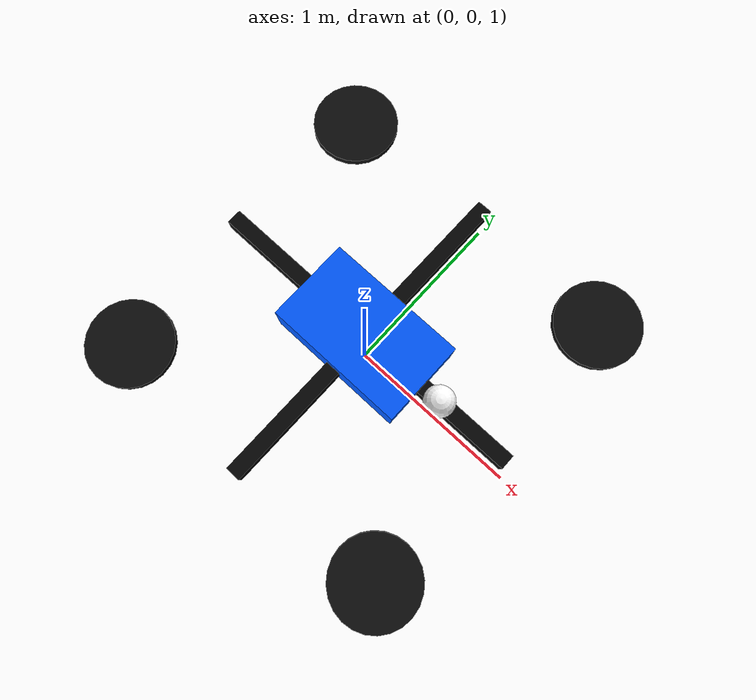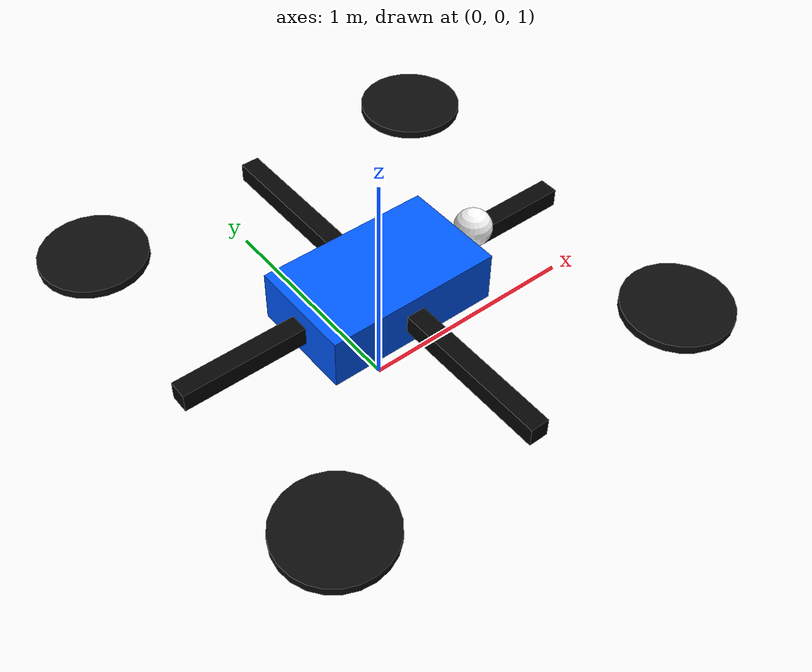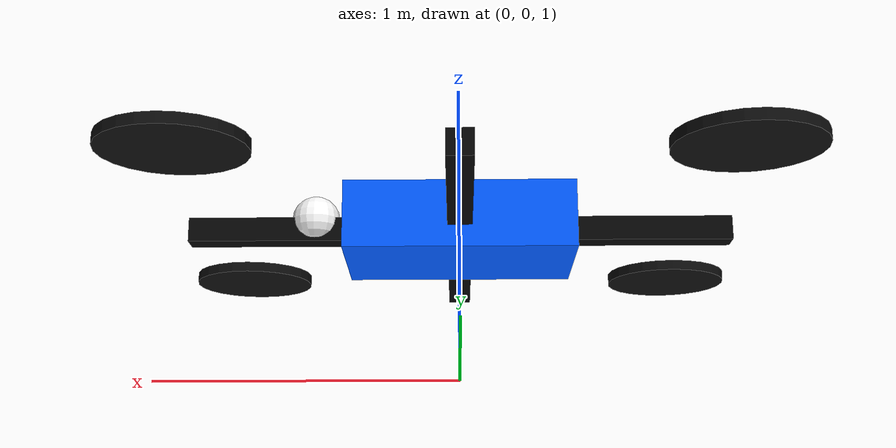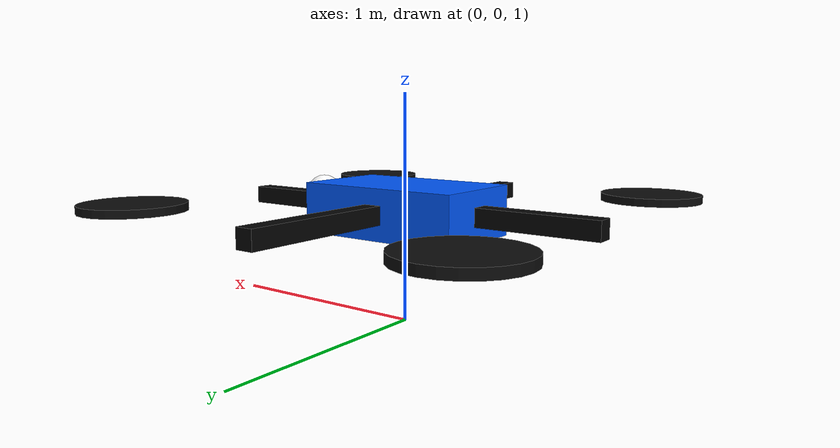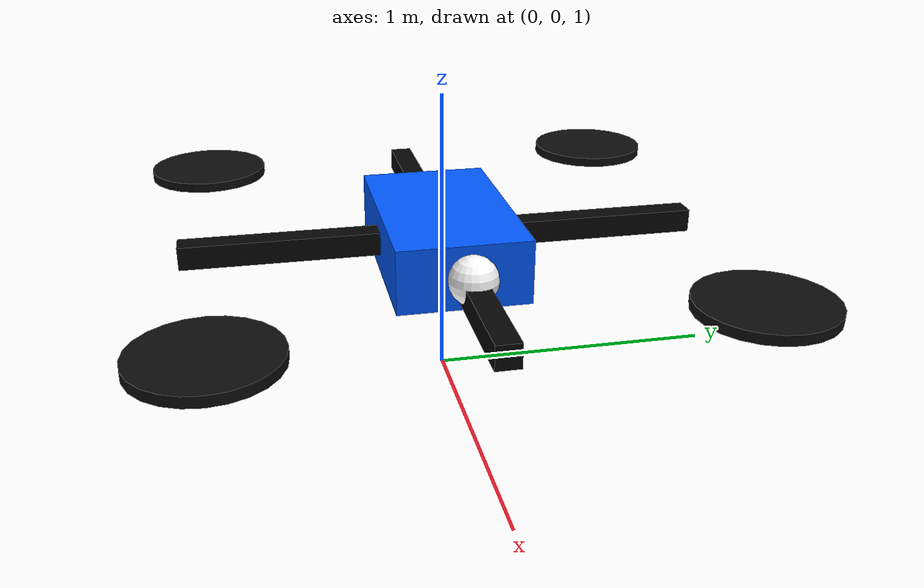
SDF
<?xml version="1.0"?>
<sdf version="1.6">
  <model name="simple_uav">
    <static>false</static>
    <pose>0 0 1.5 0 0 0</pose>
    <link name="base_link">
      <inertial>
        <mass>1.0</mass>
        <inertia>
          <ixx>0.02</ixx><iyy>0.02</iyy><izz>0.04</izz>
          <ixy>0</ixy><ixz>0</ixz><iyz>0</iyz>
        </inertia>
      </inertial>
      <visual name="body">
        <geometry><box><size>0.75 0.45 0.22</size></box></geometry>
        <material><ambient>0.0 0.22 0.95 1</ambient><diffuse>0.0 0.35 1.0 1</diffuse></material>
      </visual>
      <collision name="body_collision">
        <geometry><box><size>0.75 0.45 0.22</size></box></geometry>
      </collision>
      <visual name="arm_x">
        <geometry><box><size>1.8 0.08 0.08</size></box></geometry>
        <material><ambient>0.02 0.02 0.02 1</ambient><diffuse>0.02 0.02 0.02 1</diffuse></material>
      </visual>
      <visual name="arm_y">
        <geometry><box><size>0.08 1.8 0.08</size></box></geometry>
        <material><ambient>0.02 0.02 0.02 1</ambient><diffuse>0.02 0.02 0.02 1</diffuse></material>
      </visual>
      <visual name="front_marker">
        <pose>0.48 0 0.04 0 0 0</pose>
        <geometry><sphere><radius>0.08</radius></sphere></geometry>
        <material><ambient>1.0 1.0 1.0 1</ambient><diffuse>1.0 1.0 1.0 1</diffuse></material>
      </visual>
      <visual name="rotor_fl"><pose>0.8 0.8 0.03 0 0 0</pose><geometry><cylinder><radius>0.22</radius><length>0.035</length></cylinder></geometry><material><ambient>0.05 0.05 0.05 1</ambient><diffuse>0.05 0.05 0.05 1</diffuse></material></visual>
      <visual name="rotor_fr"><pose>0.8 -0.8 0.03 0 0 0</pose><geometry><cylinder><radius>0.22</radius><length>0.035</length></cylinder></geometry><material><ambient>0.05 0.05 0.05 1</ambient><diffuse>0.05 0.05 0.05 1</diffuse></material></visual>
      <visual name="rotor_rl"><pose>-0.8 0.8 0.03 0 0 0</pose><geometry><cylinder><radius>0.22</radius><length>0.035</length></cylinder></geometry><material><ambient>0.05 0.05 0.05 1</ambient><diffuse>0.05 0.05 0.05 1</diffuse></material></visual>
      <visual name="rotor_rr"><pose>-0.8 -0.8 0.03 0 0 0</pose><geometry><cylinder><radius>0.22</radius><length>0.035</length></cylinder></geometry><material><ambient>0.05 0.05 0.05 1</ambient><diffuse>0.05 0.05 0.05 1</diffuse></material></visual>
    </link>
  </model>
</sdf>
